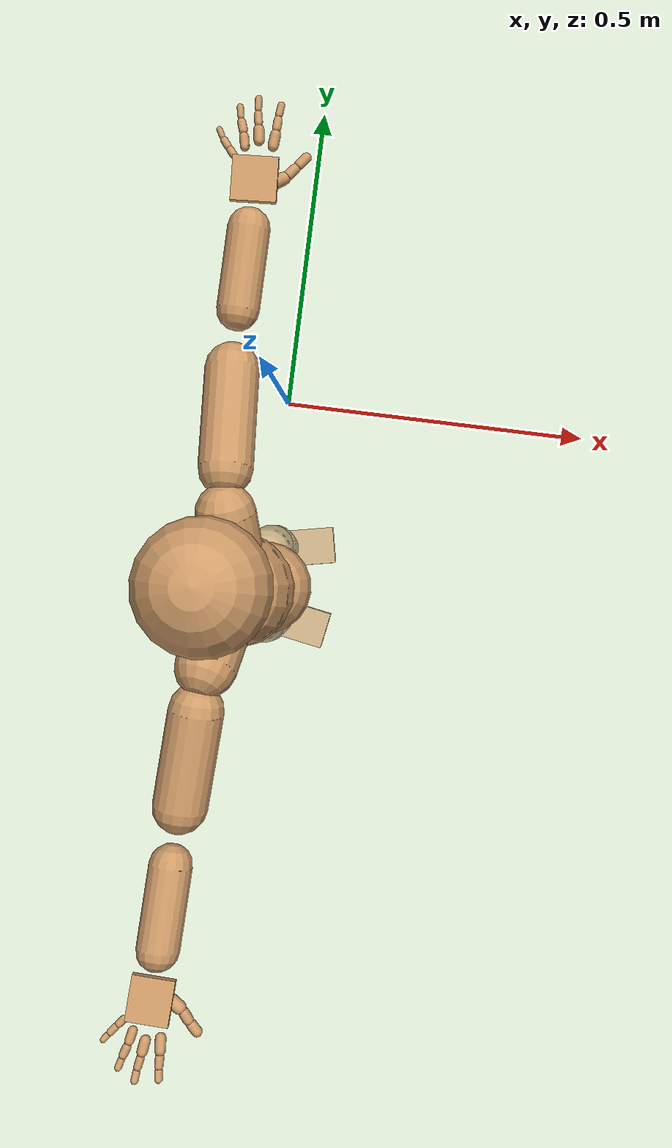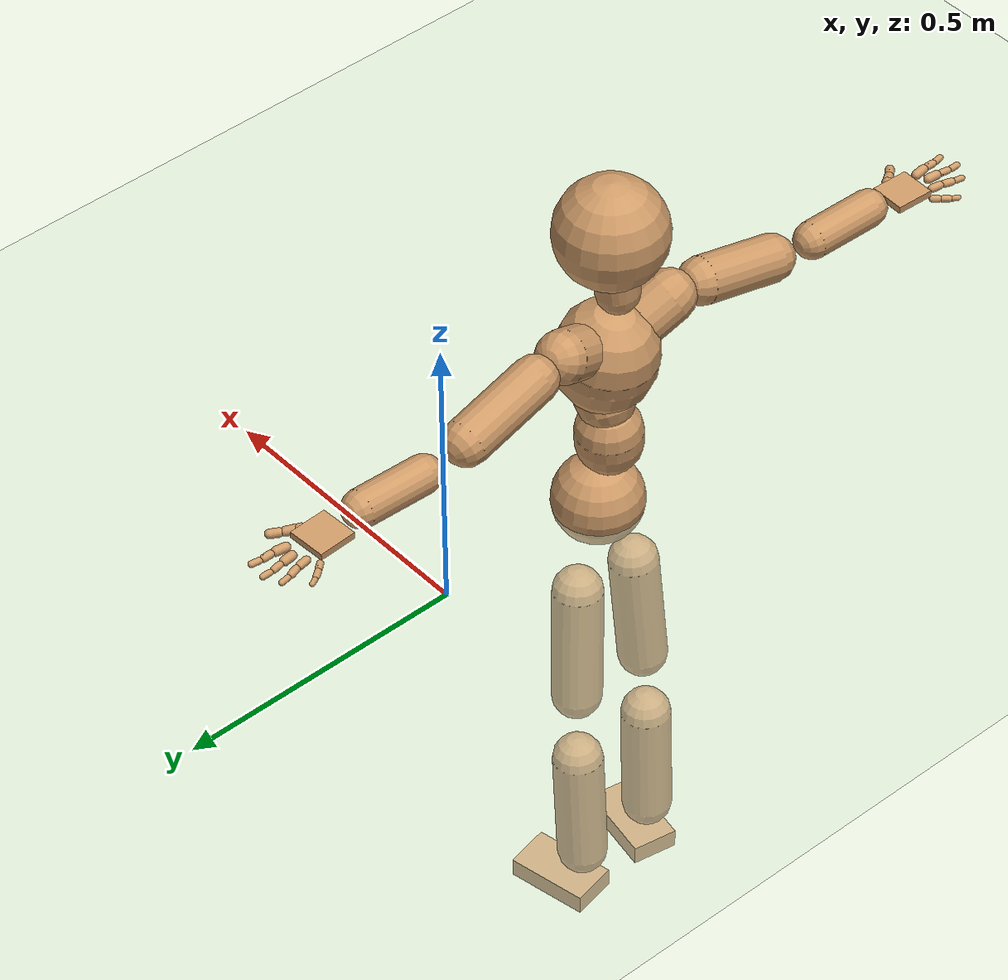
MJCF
<mujoco model="humanoid">
  <compiler coordinate="local" angle="radian"/>
  <default>
    <joint damping="0.0" armature="0.01" stiffness="0.0" limited="true"/>
    <geom conaffinity="1" condim="3" contype="7" margin="0.001" rgba="0.8 0.6 .4 1"/>
  </default>
  <asset>
    <texture type="skybox" builtin="gradient" rgb1=".4 .5 .6" rgb2="0 0 0" width="100" height="100"/>
    <texture builtin="flat" height="1278" mark="cross" markrgb="1 1 1" name="texgeom" random="0.01" rgb1="0.8 0.6 0.4" rgb2="0.8 0.6 0.4" type="cube" width="127"/>
    <texture builtin="checker" height="100" name="texplane" rgb1="0 0 0" rgb2="0.8 0.8 0.8" type="2d" width="100"/>
    <material name="MatPlane" reflectance="0.5" shininess="1" specular="1" texrepeat="60 60" texture="texplane"/>
    <material name="geom" texture="texgeom" texuniform="true"/>
  </asset>
  <worldbody>
    <light cutoff="100" diffuse="1 1 1" dir="-0 0 -1.3" directional="true" exponent="1" pos="0 0 1.3" specular=".1 .1 .1"/>
    <geom conaffinity="1" condim="3" name="floor" pos="0 0 0" rgba="0.8 0.9 0.8 1" size="100 100 .2" type="plane" material="MatPlane"/>
    <body name="Pelvis" pos="0 -0.3137 0.0127">
      <freejoint name="Pelvis"/>
      <geom type="sphere" contype="1" conaffinity="1" density="500" size="0.0772" pos="0.0000 0.0000 0.0000" name="Pelvis"/>
      <body name="L_Hip" pos="-0.0151 0.0552 -0.0824">
        <joint name="L_Hip_x" type="hinge" pos="0 0 0" axis="1 0 0" stiffness="800" damping="80" armature="0.02" range="-180.0000 180.0000"/>
        <joint name="L_Hip_y" type="hinge" pos="0 0 0" axis="0 1 0" stiffness="800" damping="80" armature="0.02" range="-180.0000 180.0000"/>
        <joint name="L_Hip_z" type="hinge" pos="0 0 0" axis="0 0 1" stiffness="800" damping="80" armature="0.02" range="-180.0000 180.0000"/>
        <geom type="capsule" contype="1" conaffinity="1" density="500" fromto="-0.0042 0.0044 -0.0725 -0.0169 0.0177 -0.2900" size="0.0426" name="L_Hip"/>
        <body name="L_Knee" pos="-0.0211 0.0221 -0.3626">
          <joint name="L_Knee_x" type="hinge" pos="0 0 0" axis="1 0 0" stiffness="800" damping="80" armature="0.02" range="-180.0000 180.0000"/>
          <joint name="L_Knee_y" type="hinge" pos="0 0 0" axis="0 1 0" stiffness="800" damping="80" armature="0.02" range="-180.0000 180.0000"/>
          <joint name="L_Knee_z" type="hinge" pos="0 0 0" axis="0 0 1" stiffness="800" damping="80" armature="0.02" range="-180.0000 180.0000"/>
          <geom type="capsule" contype="1" conaffinity="1" density="500" fromto="-0.0030 -0.0008 -0.0727 -0.0122 -0.0033 -0.2907" size="0.0429" name="L_Knee"/>
          <body name="L_Ankle" pos="-0.0152 -0.0041 -0.3634">
            <joint name="L_Ankle_x" type="hinge" pos="0 0 0" axis="1 0 0" stiffness="800" damping="80" armature="0.02" range="-180.0000 180.0000"/>
            <joint name="L_Ankle_y" type="hinge" pos="0 0 0" axis="0 1 0" stiffness="800" damping="80" armature="0.02" range="-180.0000 180.0000"/>
            <joint name="L_Ankle_z" type="hinge" pos="0 0 0" axis="0 0 1" stiffness="800" damping="80" armature="0.02" range="-180.0000 180.0000"/>
            <geom type="box" contype="1" conaffinity="1" density="500" pos="0.0483 0.0098 -0.0210" size="0.0725 0.0404 0.0179" quat="0.9950 0.0000 0.0000 0.0996" name="L_Ankle"/>
            <body name="L_Toe" pos="0.0966 0.0195 -0.042">
              <joint name="L_Toe_x" type="hinge" pos="0 0 0" axis="1 0 0" stiffness="500" damping="50" armature="0.02" range="-180.0000 180.0000"/>
              <joint name="L_Toe_y" type="hinge" pos="0 0 0" axis="0 1 0" stiffness="500" damping="50" armature="0.02" range="-180.0000 180.0000"/>
              <joint name="L_Toe_z" type="hinge" pos="0 0 0" axis="0 0 1" stiffness="500" damping="50" armature="0.02" range="-180.0000 180.0000"/>
              <geom type="box" contype="1" conaffinity="1" density="500" pos="0.0000 0.0000 0.0221" size="0.0008 0.002 0.0009" quat="0.9942 0.0000 0.0000 0.1073" name="L_Toe"/>
            </body>
          </body>
        </body>
      </body>
      <body name="R_Hip" pos="-0.0172 -0.0543 -0.0889">
        <joint name="R_Hip_x" type="hinge" pos="0 0 0" axis="1 0 0" stiffness="800" damping="80" armature="0.02" range="-180.0000 180.0000"/>
        <joint name="R_Hip_y" type="hinge" pos="0 0 0" axis="0 1 0" stiffness="800" damping="80" armature="0.02" range="-180.0000 180.0000"/>
        <joint name="R_Hip_z" type="hinge" pos="0 0 0" axis="0 0 1" stiffness="800" damping="80" armature="0.02" range="-180.0000 180.0000"/>
        <geom type="capsule" contype="1" conaffinity="1" density="500" fromto="-0.0031 -0.0049 -0.0716 -0.0125 -0.0196 -0.2865" size="0.0423" name="R_Hip"/>
        <body name="R_Knee" pos="-0.0156 -0.0246 -0.3581">
          <joint name="R_Knee_x" type="hinge" pos="0 0 0" axis="1 0 0" stiffness="800" damping="80" armature="0.02" range="-180.0000 180.0000"/>
          <joint name="R_Knee_y" type="hinge" pos="0 0 0" axis="0 1 0" stiffness="800" damping="80" armature="0.02" range="-180.0000 180.0000"/>
          <joint name="R_Knee_z" type="hinge" pos="0 0 0" axis="0 0 1" stiffness="800" damping="80" armature="0.02" range="-180.0000 180.0000"/>
          <geom type="capsule" contype="1" conaffinity="1" density="500" fromto="-0.0022 0.0000 -0.0711 -0.0088 0.0001 -0.2843" size="0.0428" name="R_Knee"/>
          <body name="R_Ankle" pos="-0.011 0.0002 -0.3554">
            <joint name="R_Ankle_x" type="hinge" pos="0 0 0" axis="1 0 0" stiffness="800" damping="80" armature="0.02" range="-180.0000 180.0000"/>
            <joint name="R_Ankle_y" type="hinge" pos="0 0 0" axis="0 1 0" stiffness="800" damping="80" armature="0.02" range="-180.0000 180.0000"/>
            <joint name="R_Ankle_z" type="hinge" pos="0 0 0" axis="0 0 1" stiffness="800" damping="80" armature="0.02" range="-180.0000 180.0000"/>
            <geom type="box" contype="1" conaffinity="1" density="500" pos="0.0453 -0.0081 -0.0229" size="0.0725 0.0404 0.0179" quat="0.9961 0.0000 0.0000 -0.0887" name="R_Ankle"/>
            <body name="R_Toe" pos="0.0906 -0.0163 -0.0459">
              <joint name="R_Toe_x" type="hinge" pos="0 0 0" axis="1 0 0" stiffness="500" damping="50" armature="0.02" range="-180.0000 180.0000"/>
              <joint name="R_Toe_y" type="hinge" pos="0 0 0" axis="0 1 0" stiffness="500" damping="50" armature="0.02" range="-180.0000 180.0000"/>
              <joint name="R_Toe_z" type="hinge" pos="0 0 0" axis="0 0 1" stiffness="500" damping="50" armature="0.02" range="-180.0000 180.0000"/>
              <geom type="box" contype="1" conaffinity="1" density="500" pos="0.0000 0.0000 0.0240" size="0.0008 0.002 0.0009" quat="0.9971 0.0000 0.0000 -0.0763" name="R_Toe"/>
            </body>
          </body>
        </body>
      </body>
      <body name="Torso" pos="-0.0224 -0.0043 0.0932">
        <joint name="Torso_x" type="hinge" pos="0 0 0" axis="1 0 0" stiffness="1000" damping="100" armature="0.02" range="-180.0000 180.0000"/>
        <joint name="Torso_y" type="hinge" pos="0 0 0" axis="0 1 0" stiffness="1000" damping="100" armature="0.02" range="-180.0000 180.0000"/>
        <joint name="Torso_z" type="hinge" pos="0 0 0" axis="0 0 1" stiffness="1000" damping="100" armature="0.02" range="-180.0000 180.0000"/>
        <geom type="capsule" contype="1" conaffinity="1" density="500" fromto="-0.0018 0.0043 0.0683 -0.0012 0.0028 0.0456" size="0.0559" name="Torso"/>
        <body name="Spine" pos="-0.003 0.0071 0.1139">
          <joint name="Spine_x" type="hinge" pos="0 0 0" axis="1 0 0" stiffness="1000" damping="100" armature="0.02" range="-180.0000 180.0000"/>
          <joint name="Spine_y" type="hinge" pos="0 0 0" axis="0 1 0" stiffness="1000" damping="100" armature="0.02" range="-180.0000 180.0000"/>
          <joint name="Spine_z" type="hinge" pos="0 0 0" axis="0 0 1" stiffness="1000" damping="100" armature="0.02" range="-180.0000 180.0000"/>
          <geom type="capsule" contype="1" conaffinity="1" density="500" fromto="0.0137 -0.0021 0.0240 0.0091 -0.0014 0.0160" size="0.0497" name="Spine"/>
          <body name="Chest" pos="0.0228 -0.0036 0.0399">
            <joint name="Chest_x" type="hinge" pos="0 0 0" axis="1 0 0" stiffness="1000" damping="100" armature="0.02" range="-180.0000 180.0000"/>
            <joint name="Chest_y" type="hinge" pos="0 0 0" axis="0 1 0" stiffness="1000" damping="100" armature="0.02" range="-180.0000 180.0000"/>
            <joint name="Chest_z" type="hinge" pos="0 0 0" axis="0 0 1" stiffness="1000" damping="100" armature="0.02" range="-180.0000 180.0000"/>
            <geom type="capsule" contype="1" conaffinity="1" density="500" fromto="-0.0145 -0.0014 0.0754 -0.0097 -0.0009 0.0503" size="0.0841" name="Chest"/>
            <body name="Neck" pos="-0.0364 -0.0049 0.1749">
              <joint name="Neck_x" type="hinge" pos="0 0 0" axis="1 0 0" stiffness="500" damping="50" armature="0.02" range="-180.0000 180.0000"/>
              <joint name="Neck_y" type="hinge" pos="0 0 0" axis="0 1 0" stiffness="500" damping="50" armature="0.02" range="-180.0000 180.0000"/>
              <joint name="Neck_z" type="hinge" pos="0 0 0" axis="0 0 1" stiffness="500" damping="50" armature="0.02" range="-180.0000 180.0000"/>
              <geom type="capsule" contype="1" conaffinity="1" density="500" fromto="0.0022 0.0016 0.0287 0.0089 0.0064 0.1149" size="0.0357" name="Neck"/>
              <body name="Head" pos="0.0111 0.008 0.1437">
                <joint name="Head_x" type="hinge" pos="0 0 0" axis="1 0 0" stiffness="500" damping="50" armature="0.02" range="-180.0000 180.0000"/>
                <joint name="Head_y" type="hinge" pos="0 0 0" axis="0 1 0" stiffness="500" damping="50" armature="0.02" range="-180.0000 180.0000"/>
                <joint name="Head_z" type="hinge" pos="0 0 0" axis="0 0 1" stiffness="500" damping="50" armature="0.02" range="-180.0000 180.0000"/>
                <geom type="sphere" contype="1" conaffinity="1" density="500" size="0.0919" pos="0.0000 0.0000 0.0000" name="Head"/>
              </body>
            </body>
            <body name="L_Thorax" pos="-0.0158 0.046 0.1028">
              <joint name="L_Thorax_x" type="hinge" pos="0 0 0" axis="1 0 0" stiffness="500" damping="50" armature="0.02" range="-180.0000 180.0000"/>
              <joint name="L_Thorax_y" type="hinge" pos="0 0 0" axis="0 1 0" stiffness="500" damping="50" armature="0.02" range="-180.0000 180.0000"/>
              <joint name="L_Thorax_z" type="hinge" pos="0 0 0" axis="0 0 1" stiffness="500" damping="50" armature="0.02" range="-180.0000 180.0000"/>
              <geom type="capsule" contype="1" conaffinity="1" density="500" fromto="-0.0038 0.0148 0.0075 -0.0152 0.0594 0.0300" size="0.0436" name="L_Thorax"/>
              <body name="L_Shoulder" pos="-0.019 0.0742 0.0375">
                <joint name="L_Shoulder_x" type="hinge" pos="0 0 0" axis="1 0 0" stiffness="500" damping="50" armature="0.02" range="-180.0000 180.0000"/>
                <joint name="L_Shoulder_y" type="hinge" pos="0 0 0" axis="0 1 0" stiffness="500" damping="50" armature="0.02" range="-180.0000 180.0000"/>
                <joint name="L_Shoulder_z" type="hinge" pos="0 0 0" axis="0 0 1" stiffness="500" damping="50" armature="0.02" range="-180.0000 180.0000"/>
                <geom type="capsule" contype="1" conaffinity="1" density="500" fromto="-0.0042 0.0482 -0.0099 -0.0167 0.1929 -0.0396" size="0.0393" name="L_Shoulder"/>
                <body name="L_Elbow" pos="-0.0209 0.2411 -0.0495">
                  <joint name="L_Elbow_x" type="hinge" pos="0 0 0" axis="1 0 0" stiffness="500" damping="50" armature="0.02" range="-720.0000 720.0000"/>
                  <joint name="L_Elbow_y" type="hinge" pos="0 0 0" axis="0 1 0" stiffness="500" damping="50" armature="0.02" range="-720.0000 720.0000"/>
                  <joint name="L_Elbow_z" type="hinge" pos="0 0 0" axis="0 0 1" stiffness="500" damping="50" armature="0.02" range="-720.0000 720.0000"/>
                  <geom type="capsule" contype="1" conaffinity="1" density="500" fromto="0.0005 0.0395 0.0011 0.0018 0.1578 0.0045" size="0.0312" name="L_Elbow"/>
                  <body name="L_Wrist" pos="0.0023 0.1973 0.0056">
                    <joint name="L_Wrist_x" type="hinge" pos="0 0 0" axis="1 0 0" stiffness="300" damping="30" armature="0.02" range="-180.0000 180.0000"/>
                    <joint name="L_Wrist_y" type="hinge" pos="0 0 0" axis="0 1 0" stiffness="300" damping="30" armature="0.02" range="-180.0000 180.0000"/>
                    <joint name="L_Wrist_z" type="hinge" pos="0 0 0" axis="0 0 1" stiffness="300" damping="30" armature="0.02" range="-180.0000 180.0000"/>
                    <geom type="box" contype="1" conaffinity="1" density="500" pos="-0.0019 0.0344 -0.0073" size="0.0332 0.0335 0.0058" quat="0.7267 0.0000 0.0000 -0.6870" name="L_Wrist"/>
                    <body name="L_Index1" pos="0.0176 0.0817 -0.0129">
                      <joint name="L_Index1_x" type="hinge" pos="0 0 0" axis="1 0 0" stiffness="100" damping="10" armature="0.02" range="-180.0000 180.0000"/>
                      <joint name="L_Index1_y" type="hinge" pos="0 0 0" axis="0 1 0" stiffness="100" damping="10" armature="0.02" range="-180.0000 180.0000"/>
                      <joint name="L_Index1_z" type="hinge" pos="0 0 0" axis="0 0 1" stiffness="100" damping="10" armature="0.02" range="-180.0000 180.0000"/>
                      <geom type="capsule" contype="1" conaffinity="1" density="500" fromto="0.0005 0.0056 0.0004 0.0021 0.0225 0.0017" size="0.0078" name="L_Index1"/>
                      <body name="L_Index2" pos="0.0026 0.0282 0.0021">
                        <joint name="L_Index2_x" type="hinge" pos="0 0 0" axis="1 0 0" stiffness="100" damping="10" armature="0.02" range="-180.0000 180.0000"/>
                        <joint name="L_Index2_y" type="hinge" pos="0 0 0" axis="0 1 0" stiffness="100" damping="10" armature="0.02" range="-180.0000 180.0000"/>
                        <joint name="L_Index2_z" type="hinge" pos="0 0 0" axis="0 0 1" stiffness="100" damping="10" armature="0.02" range="-180.0000 180.0000"/>
                        <geom type="capsule" contype="1" conaffinity="1" density="500" fromto="0.0001 0.0040 -0.0003 0.0004 0.0161 -0.0010" size="0.0064" name="L_Index2"/>
                        <body name="L_Index3" pos="0.0005 0.0202 -0.0013">
                          <joint name="L_Index3_x" type="hinge" pos="0 0 0" axis="1 0 0" stiffness="100" damping="10" armature="0.02" range="-180.0000 180.0000"/>
                          <joint name="L_Index3_y" type="hinge" pos="0 0 0" axis="0 1 0" stiffness="100" damping="10" armature="0.02" range="-180.0000 180.0000"/>
                          <joint name="L_Index3_z" type="hinge" pos="0 0 0" axis="0 0 1" stiffness="100" damping="10" armature="0.02" range="-180.0000 180.0000"/>
                          <geom type="capsule" contype="1" conaffinity="1" density="500" fromto="0.0005 0.0044 0.0001 0.0020 0.0177 0.0006" size="0.0054" name="L_Index3"/>
                        </body>
                      </body>
                    </body>
                    <body name="L_Middle1" pos="-0.0022 0.0874 -0.011">
                      <joint name="L_Middle1_x" type="hinge" pos="0 0 0" axis="1 0 0" stiffness="100" damping="10" armature="0.02" range="-180.0000 180.0000"/>
                      <joint name="L_Middle1_y" type="hinge" pos="0 0 0" axis="0 1 0" stiffness="100" damping="10" armature="0.02" range="-180.0000 180.0000"/>
                      <joint name="L_Middle1_z" type="hinge" pos="0 0 0" axis="0 0 1" stiffness="100" damping="10" armature="0.02" range="-180.0000 180.0000"/>
                      <geom type="capsule" contype="1" conaffinity="1" density="500" fromto="-0.0008 0.0053 0.0002 -0.0030 0.0212 0.0008" size="0.0078" name="L_Middle1"/>
                      <body name="L_Middle2" pos="-0.0038 0.0265 0.001">
                        <joint name="L_Middle2_x" type="hinge" pos="0 0 0" axis="1 0 0" stiffness="100" damping="10" armature="0.02" range="-180.0000 180.0000"/>
                        <joint name="L_Middle2_y" type="hinge" pos="0 0 0" axis="0 1 0" stiffness="100" damping="10" armature="0.02" range="-180.0000 180.0000"/>
                        <joint name="L_Middle2_z" type="hinge" pos="0 0 0" axis="0 0 1" stiffness="100" damping="10" armature="0.02" range="-180.0000 180.0000"/>
                        <geom type="capsule" contype="1" conaffinity="1" density="500" fromto="-0.0007 0.0041 -0.0001 -0.0028 0.0166 -0.0003" size="0.0059" name="L_Middle2"/>
                        <body name="L_Middle3" pos="-0.0035 0.0207 -0.0003">
                          <joint name="L_Middle3_x" type="hinge" pos="0 0 0" axis="1 0 0" stiffness="100" damping="10" armature="0.02" range="-180.0000 180.0000"/>
                          <joint name="L_Middle3_y" type="hinge" pos="0 0 0" axis="0 1 0" stiffness="100" damping="10" armature="0.02" range="-180.0000 180.0000"/>
                          <joint name="L_Middle3_z" type="hinge" pos="0 0 0" axis="0 0 1" stiffness="100" damping="10" armature="0.02" range="-180.0000 180.0000"/>
                          <geom type="capsule" contype="1" conaffinity="1" density="500" fromto="-0.0003 0.0045 0.0003 -0.0012 0.0182 0.0013" size="0.0052" name="L_Middle3"/>
                        </body>
                      </body>
                    </body>
                    <body name="L_Pinky1" pos="-0.0353 0.066 -0.0174">
                      <joint name="L_Pinky1_x" type="hinge" pos="0 0 0" axis="1 0 0" stiffness="100" damping="10" armature="0.02" range="-180.0000 180.0000"/>
                      <joint name="L_Pinky1_y" type="hinge" pos="0 0 0" axis="0 1 0" stiffness="100" damping="10" armature="0.02" range="-180.0000 180.0000"/>
                      <joint name="L_Pinky1_z" type="hinge" pos="0 0 0" axis="0 0 1" stiffness="100" damping="10" armature="0.02" range="-180.0000 180.0000"/>
                      <geom type="capsule" contype="1" conaffinity="1" density="500" fromto="-0.0022 0.0025 -0.0000 -0.0086 0.0101 -0.0001" size="0.0057" name="L_Pinky1"/>
                      <body name="L_Pinky2" pos="-0.0108 0.0126 -0.0001">
                        <joint name="L_Pinky2_x" type="hinge" pos="0 0 0" axis="1 0 0" stiffness="100" damping="10" armature="0.02" range="-180.0000 180.0000"/>
                        <joint name="L_Pinky2_y" type="hinge" pos="0 0 0" axis="0 1 0" stiffness="100" damping="10" armature="0.02" range="-180.0000 180.0000"/>
                        <joint name="L_Pinky2_z" type="hinge" pos="0 0 0" axis="0 0 1" stiffness="100" damping="10" armature="0.02" range="-180.0000 180.0000"/>
                        <geom type="capsule" contype="1" conaffinity="1" density="500" fromto="-0.0021 0.0026 -0.0001 -0.0083 0.0105 -0.0004" size="0.0056" name="L_Pinky2"/>
                        <body name="L_Pinky3" pos="-0.0104 0.0131 -0.0005">
                          <joint name="L_Pinky3_x" type="hinge" pos="0 0 0" axis="1 0 0" stiffness="100" damping="10" armature="0.02" range="-180.0000 180.0000"/>
                          <joint name="L_Pinky3_y" type="hinge" pos="0 0 0" axis="0 1 0" stiffness="100" damping="10" armature="0.02" range="-180.0000 180.0000"/>
                          <joint name="L_Pinky3_z" type="hinge" pos="0 0 0" axis="0 0 1" stiffness="100" damping="10" armature="0.02" range="-180.0000 180.0000"/>
                          <geom type="capsule" contype="1" conaffinity="1" density="500" fromto="-0.0017 0.0030 0.0003 -0.0067 0.0121 0.0012" size="0.0044" name="L_Pinky3"/>
                        </body>
                      </body>
                    </body>
                    <body name="L_Ring1" pos="-0.0216 0.0771 -0.0131">
                      <joint name="L_Ring1_x" type="hinge" pos="0 0 0" axis="1 0 0" stiffness="100" damping="10" armature="0.02" range="-180.0000 180.0000"/>
                      <joint name="L_Ring1_y" type="hinge" pos="0 0 0" axis="0 1 0" stiffness="100" damping="10" armature="0.02" range="-180.0000 180.0000"/>
                      <joint name="L_Ring1_z" type="hinge" pos="0 0 0" axis="0 0 1" stiffness="100" damping="10" armature="0.02" range="-180.0000 180.0000"/>
                      <geom type="capsule" contype="1" conaffinity="1" density="500" fromto="-0.0010 0.0048 0.0003 -0.0039 0.0191 0.0011" size="0.0068" name="L_Ring1"/>
                      <body name="L_Ring2" pos="-0.0049 0.0239 0.0014">
                        <joint name="L_Ring2_x" type="hinge" pos="0 0 0" axis="1 0 0" stiffness="100" damping="10" armature="0.02" range="-180.0000 180.0000"/>
                        <joint name="L_Ring2_y" type="hinge" pos="0 0 0" axis="0 1 0" stiffness="100" damping="10" armature="0.02" range="-180.0000 180.0000"/>
                        <joint name="L_Ring2_z" type="hinge" pos="0 0 0" axis="0 0 1" stiffness="100" damping="10" armature="0.02" range="-180.0000 180.0000"/>
                        <geom type="capsule" contype="1" conaffinity="1" density="500" fromto="-0.0013 0.0040 -0.0002 -0.0051 0.0159 -0.0006" size="0.0064" name="L_Ring2"/>
                        <body name="L_Ring3" pos="-0.0064 0.0199 -0.0008">
                          <joint name="L_Ring3_x" type="hinge" pos="0 0 0" axis="1 0 0" stiffness="100" damping="10" armature="0.02" range="-180.0000 180.0000"/>
                          <joint name="L_Ring3_y" type="hinge" pos="0 0 0" axis="0 1 0" stiffness="100" damping="10" armature="0.02" range="-180.0000 180.0000"/>
                          <joint name="L_Ring3_z" type="hinge" pos="0 0 0" axis="0 0 1" stiffness="100" damping="10" armature="0.02" range="-180.0000 180.0000"/>
                          <geom type="capsule" contype="1" conaffinity="1" density="500" fromto="-0.0009 0.0044 0.0002 -0.0035 0.0175 0.0010" size="0.0049" name="L_Ring3"/>
                        </body>
                      </body>
                    </body>
                    <body name="L_Thumb1" pos="0.0221 0.0322 -0.0186">
                      <joint name="L_Thumb1_x" type="hinge" pos="0 0 0" axis="1 0 0" stiffness="100" damping="10" armature="0.02" range="-180.0000 180.0000"/>
                      <joint name="L_Thumb1_y" type="hinge" pos="0 0 0" axis="0 1 0" stiffness="100" damping="10" armature="0.02" range="-180.0000 180.0000"/>
                      <joint name="L_Thumb1_z" type="hinge" pos="0 0 0" axis="0 0 1" stiffness="100" damping="10" armature="0.02" range="-180.0000 180.0000"/>
                      <geom type="capsule" contype="1" conaffinity="1" density="500" fromto="0.0041 0.0029 0.0000 0.0165 0.0114 0.0001" size="0.0098" name="L_Thumb1"/>
                      <body name="L_Thumb2" pos="0.0207 0.0143 0.0001">
                        <joint name="L_Thumb2_x" type="hinge" pos="0 0 0" axis="1 0 0" stiffness="100" damping="10" armature="0.02" range="-180.0000 180.0000"/>
                        <joint name="L_Thumb2_y" type="hinge" pos="0 0 0" axis="0 1 0" stiffness="100" damping="10" armature="0.02" range="-180.0000 180.0000"/>
                        <joint name="L_Thumb2_z" type="hinge" pos="0 0 0" axis="0 0 1" stiffness="100" damping="10" armature="0.02" range="-180.0000 180.0000"/>
                        <geom type="capsule" contype="1" conaffinity="1" density="500" fromto="0.0025 0.0035 -0.0010 0.0100 0.0142 -0.0039" size="0.0078" name="L_Thumb2"/>
                        <body name="L_Thumb3" pos="0.0125 0.0177 -0.0049">
                          <joint name="L_Thumb3_x" type="hinge" pos="0 0 0" axis="1 0 0" stiffness="100" damping="10" armature="0.02" range="-180.0000 180.0000"/>
                          <joint name="L_Thumb3_y" type="hinge" pos="0 0 0" axis="0 1 0" stiffness="100" damping="10" armature="0.02" range="-180.0000 180.0000"/>
                          <joint name="L_Thumb3_z" type="hinge" pos="0 0 0" axis="0 0 1" stiffness="100" damping="10" armature="0.02" range="-180.0000 180.0000"/>
                          <geom type="capsule" contype="1" conaffinity="1" density="500" fromto="0.0029 0.0039 -0.0006 0.0116 0.0158 -0.0023" size="0.0075" name="L_Thumb3"/>
                        </body>
                      </body>
                    </body>
                  </body>
                </body>
              </body>
            </body>
            <body name="R_Thorax" pos="-0.0205 -0.048 0.0993">
              <joint name="R_Thorax_x" type="hinge" pos="0 0 0" axis="1 0 0" stiffness="500" damping="50" armature="0.02" range="-180.0000 180.0000"/>
              <joint name="R_Thorax_y" type="hinge" pos="0 0 0" axis="0 1 0" stiffness="500" damping="50" armature="0.02" range="-180.0000 180.0000"/>
              <joint name="R_Thorax_z" type="hinge" pos="0 0 0" axis="0 0 1" stiffness="500" damping="50" armature="0.02" range="-180.0000 180.0000"/>
              <geom type="capsule" contype="1" conaffinity="1" density="500" fromto="-0.0028 -0.0159 0.0081 -0.0110 -0.0635 0.0322" size="0.0446" name="R_Thorax"/>
              <body name="R_Shoulder" pos="-0.0138 -0.0794 0.0403">
                <joint name="R_Shoulder_x" type="hinge" pos="0 0 0" axis="1 0 0" stiffness="500" damping="50" armature="0.02" range="-180.0000 180.0000"/>
                <joint name="R_Shoulder_y" type="hinge" pos="0 0 0" axis="0 1 0" stiffness="500" damping="50" armature="0.02" range="-180.0000 180.0000"/>
                <joint name="R_Shoulder_z" type="hinge" pos="0 0 0" axis="0 0 1" stiffness="500" damping="50" armature="0.02" range="-180.0000 180.0000"/>
                <geom type="capsule" contype="1" conaffinity="1" density="500" fromto="-0.0030 -0.0464 -0.0090 -0.0121 -0.1857 -0.0362" size="0.0397" name="R_Shoulder"/>
                <body name="R_Elbow" pos="-0.0152 -0.2321 -0.0452">
                  <joint name="R_Elbow_x" type="hinge" pos="0 0 0" axis="1 0 0" stiffness="500" damping="50" armature="0.02" range="-720.0000 720.0000"/>
                  <joint name="R_Elbow_y" type="hinge" pos="0 0 0" axis="0 1 0" stiffness="500" damping="50" armature="0.02" range="-720.0000 720.0000"/>
                  <joint name="R_Elbow_z" type="hinge" pos="0 0 0" axis="0 0 1" stiffness="500" damping="50" armature="0.02" range="-720.0000 720.0000"/>
                  <geom type="capsule" contype="1" conaffinity="1" density="500" fromto="-0.0010 -0.0397 0.0003 -0.0039 -0.1587 0.0012" size="0.0314" name="R_Elbow"/>
                  <body name="R_Wrist" pos="-0.0049 -0.1984 0.0015">
                    <joint name="R_Wrist_x" type="hinge" pos="0 0 0" axis="1 0 0" stiffness="300" damping="30" armature="0.02" range="-180.0000 180.0000"/>
                    <joint name="R_Wrist_y" type="hinge" pos="0 0 0" axis="0 1 0" stiffness="300" damping="30" armature="0.02" range="-180.0000 180.0000"/>
                    <joint name="R_Wrist_z" type="hinge" pos="0 0 0" axis="0 0 1" stiffness="300" damping="30" armature="0.02" range="-180.0000 180.0000"/>
                    <geom type="box" contype="1" conaffinity="1" density="500" pos="-0.0014 -0.0341 -0.0070" size="0.0332 0.0312 0.0061" quat="0.7219 0.0000 0.0000 0.6920" name="R_Wrist"/>
                    <body name="R_Index1" pos="0.0186 -0.0809 -0.0123">
                      <joint name="R_Index1_x" type="hinge" pos="0 0 0" axis="1 0 0" stiffness="100" damping="10" armature="0.02" range="-180.0000 180.0000"/>
                      <joint name="R_Index1_y" type="hinge" pos="0 0 0" axis="0 1 0" stiffness="100" damping="10" armature="0.02" range="-180.0000 180.0000"/>
                      <joint name="R_Index1_z" type="hinge" pos="0 0 0" axis="0 0 1" stiffness="100" damping="10" armature="0.02" range="-180.0000 180.0000"/>
                      <geom type="capsule" contype="1" conaffinity="1" density="500" fromto="0.0005 -0.0056 0.0004 0.0021 -0.0225 0.0017" size="0.0078" name="R_Index1"/>
                      <body name="R_Index2" pos="0.0026 -0.0282 0.0021">
                        <joint name="R_Index2_x" type="hinge" pos="0 0 0" axis="1 0 0" stiffness="100" damping="10" armature="0.02" range="-180.0000 180.0000"/>
                        <joint name="R_Index2_y" type="hinge" pos="0 0 0" axis="0 1 0" stiffness="100" damping="10" armature="0.02" range="-180.0000 180.0000"/>
                        <joint name="R_Index2_z" type="hinge" pos="0 0 0" axis="0 0 1" stiffness="100" damping="10" armature="0.02" range="-180.0000 180.0000"/>
                        <geom type="capsule" contype="1" conaffinity="1" density="500" fromto="0.0001 -0.0040 -0.0003 0.0004 -0.0161 -0.0010" size="0.0064" name="R_Index2"/>
                        <body name="R_Index3" pos="0.0005 -0.0202 -0.0013">
                          <joint name="R_Index3_x" type="hinge" pos="0 0 0" axis="1 0 0" stiffness="100" damping="10" armature="0.02" range="-180.0000 180.0000"/>
                          <joint name="R_Index3_y" type="hinge" pos="0 0 0" axis="0 1 0" stiffness="100" damping="10" armature="0.02" range="-180.0000 180.0000"/>
                          <joint name="R_Index3_z" type="hinge" pos="0 0 0" axis="0 0 1" stiffness="100" damping="10" armature="0.02" range="-180.0000 180.0000"/>
                          <geom type="capsule" contype="1" conaffinity="1" density="500" fromto="0.0005 -0.0036 0.0001 0.0020 -0.0145 0.0006" size="0.0057" name="R_Index3"/>
                        </body>
                      </body>
                    </body>
                    <body name="R_Middle1" pos="-0.0012 -0.0866 -0.0103">
                      <joint name="R_Middle1_x" type="hinge" pos="0 0 0" axis="1 0 0" stiffness="100" damping="10" armature="0.02" range="-180.0000 180.0000"/>
                      <joint name="R_Middle1_y" type="hinge" pos="0 0 0" axis="0 1 0" stiffness="100" damping="10" armature="0.02" range="-180.0000 180.0000"/>
                      <joint name="R_Middle1_z" type="hinge" pos="0 0 0" axis="0 0 1" stiffness="100" damping="10" armature="0.02" range="-180.0000 180.0000"/>
                      <geom type="capsule" contype="1" conaffinity="1" density="500" fromto="-0.0008 -0.0053 0.0002 -0.0030 -0.0212 0.0008" size="0.0078" name="R_Middle1"/>
                      <body name="R_Middle2" pos="-0.0038 -0.0265 0.001">
                        <joint name="R_Middle2_x" type="hinge" pos="0 0 0" axis="1 0 0" stiffness="100" damping="10" armature="0.02" range="-180.0000 180.0000"/>
                        <joint name="R_Middle2_y" type="hinge" pos="0 0 0" axis="0 1 0" stiffness="100" damping="10" armature="0.02" range="-180.0000 180.0000"/>
                        <joint name="R_Middle2_z" type="hinge" pos="0 0 0" axis="0 0 1" stiffness="100" damping="10" armature="0.02" range="-180.0000 180.0000"/>
                        <geom type="capsule" contype="1" conaffinity="1" density="500" fromto="-0.0007 -0.0041 -0.0001 -0.0028 -0.0166 -0.0003" size="0.0059" name="R_Middle2"/>
                        <body name="R_Middle3" pos="-0.0035 -0.0207 -0.0003">
                          <joint name="R_Middle3_x" type="hinge" pos="0 0 0" axis="1 0 0" stiffness="100" damping="10" armature="0.02" range="-180.0000 180.0000"/>
                          <joint name="R_Middle3_y" type="hinge" pos="0 0 0" axis="0 1 0" stiffness="100" damping="10" armature="0.02" range="-180.0000 180.0000"/>
                          <joint name="R_Middle3_z" type="hinge" pos="0 0 0" axis="0 0 1" stiffness="100" damping="10" armature="0.02" range="-180.0000 180.0000"/>
                          <geom type="capsule" contype="1" conaffinity="1" density="500" fromto="-0.0003 -0.0037 0.0003 -0.0012 -0.0150 0.0013" size="0.0055" name="R_Middle3"/>
                        </body>
                      </body>
                    </body>
                    <body name="R_Pinky1" pos="-0.0343 -0.0653 -0.0167">
                      <joint name="R_Pinky1_x" type="hinge" pos="0 0 0" axis="1 0 0" stiffness="100" damping="10" armature="0.02" range="-180.0000 180.0000"/>
                      <joint name="R_Pinky1_y" type="hinge" pos="0 0 0" axis="0 1 0" stiffness="100" damping="10" armature="0.02" range="-180.0000 180.0000"/>
                      <joint name="R_Pinky1_z" type="hinge" pos="0 0 0" axis="0 0 1" stiffness="100" damping="10" armature="0.02" range="-180.0000 180.0000"/>
                      <geom type="capsule" contype="1" conaffinity="1" density="500" fromto="-0.0022 -0.0025 -0.0000 -0.0086 -0.0101 -0.0001" size="0.0057" name="R_Pinky1"/>
                      <body name="R_Pinky2" pos="-0.0108 -0.0126 -0.0001">
                        <joint name="R_Pinky2_x" type="hinge" pos="0 0 0" axis="1 0 0" stiffness="100" damping="10" armature="0.02" range="-180.0000 180.0000"/>
                        <joint name="R_Pinky2_y" type="hinge" pos="0 0 0" axis="0 1 0" stiffness="100" damping="10" armature="0.02" range="-180.0000 180.0000"/>
                        <joint name="R_Pinky2_z" type="hinge" pos="0 0 0" axis="0 0 1" stiffness="100" damping="10" armature="0.02" range="-180.0000 180.0000"/>
                        <geom type="capsule" contype="1" conaffinity="1" density="500" fromto="-0.0021 -0.0026 -0.0001 -0.0083 -0.0105 -0.0004" size="0.0056" name="R_Pinky2"/>
                        <body name="R_Pinky3" pos="-0.0104 -0.0131 -0.0005">
                          <joint name="R_Pinky3_x" type="hinge" pos="0 0 0" axis="1 0 0" stiffness="100" damping="10" armature="0.02" range="-180.0000 180.0000"/>
                          <joint name="R_Pinky3_y" type="hinge" pos="0 0 0" axis="0 1 0" stiffness="100" damping="10" armature="0.02" range="-180.0000 180.0000"/>
                          <joint name="R_Pinky3_z" type="hinge" pos="0 0 0" axis="0 0 1" stiffness="100" damping="10" armature="0.02" range="-180.0000 180.0000"/>
                          <geom type="capsule" contype="1" conaffinity="1" density="500" fromto="-0.0017 -0.0022 0.0003 -0.0067 -0.0089 0.0012" size="0.0046" name="R_Pinky3"/>
                        </body>
                      </body>
                    </body>
                    <body name="R_Ring1" pos="-0.0206 -0.0763 -0.0125">
                      <joint name="R_Ring1_x" type="hinge" pos="0 0 0" axis="1 0 0" stiffness="100" damping="10" armature="0.02" range="-180.0000 180.0000"/>
                      <joint name="R_Ring1_y" type="hinge" pos="0 0 0" axis="0 1 0" stiffness="100" damping="10" armature="0.02" range="-180.0000 180.0000"/>
                      <joint name="R_Ring1_z" type="hinge" pos="0 0 0" axis="0 0 1" stiffness="100" damping="10" armature="0.02" range="-180.0000 180.0000"/>
                      <geom type="capsule" contype="1" conaffinity="1" density="500" fromto="-0.0010 -0.0048 0.0003 -0.0039 -0.0191 0.0011" size="0.0068" name="R_Ring1"/>
                      <body name="R_Ring2" pos="-0.0049 -0.0239 0.0014">
                        <joint name="R_Ring2_x" type="hinge" pos="0 0 0" axis="1 0 0" stiffness="100" damping="10" armature="0.02" range="-180.0000 180.0000"/>
                        <joint name="R_Ring2_y" type="hinge" pos="0 0 0" axis="0 1 0" stiffness="100" damping="10" armature="0.02" range="-180.0000 180.0000"/>
                        <joint name="R_Ring2_z" type="hinge" pos="0 0 0" axis="0 0 1" stiffness="100" damping="10" armature="0.02" range="-180.0000 180.0000"/>
                        <geom type="capsule" contype="1" conaffinity="1" density="500" fromto="-0.0013 -0.0040 -0.0002 -0.0051 -0.0159 -0.0006" size="0.0064" name="R_Ring2"/>
                        <body name="R_Ring3" pos="-0.0064 -0.0199 -0.0008">
                          <joint name="R_Ring3_x" type="hinge" pos="0 0 0" axis="1 0 0" stiffness="100" damping="10" armature="0.02" range="-180.0000 180.0000"/>
                          <joint name="R_Ring3_y" type="hinge" pos="0 0 0" axis="0 1 0" stiffness="100" damping="10" armature="0.02" range="-180.0000 180.0000"/>
                          <joint name="R_Ring3_z" type="hinge" pos="0 0 0" axis="0 0 1" stiffness="100" damping="10" armature="0.02" range="-180.0000 180.0000"/>
                          <geom type="capsule" contype="1" conaffinity="1" density="500" fromto="-0.0009 -0.0036 0.0002 -0.0035 -0.0143 0.0010" size="0.0052" name="R_Ring3"/>
                        </body>
                      </body>
                    </body>
                    <body name="R_Thumb1" pos="0.0231 -0.0314 -0.018">
                      <joint name="R_Thumb1_x" type="hinge" pos="0 0 0" axis="1 0 0" stiffness="100" damping="10" armature="0.02" range="-180.0000 180.0000"/>
                      <joint name="R_Thumb1_y" type="hinge" pos="0 0 0" axis="0 1 0" stiffness="100" damping="10" armature="0.02" range="-180.0000 180.0000"/>
                      <joint name="R_Thumb1_z" type="hinge" pos="0 0 0" axis="0 0 1" stiffness="100" damping="10" armature="0.02" range="-180.0000 180.0000"/>
                      <geom type="capsule" contype="1" conaffinity="1" density="500" fromto="0.0041 -0.0029 0.0000 0.0165 -0.0114 0.0001" size="0.0098" name="R_Thumb1"/>
                      <body name="R_Thumb2" pos="0.0207 -0.0143 0.0001">
                        <joint name="R_Thumb2_x" type="hinge" pos="0 0 0" axis="1 0 0" stiffness="100" damping="10" armature="0.02" range="-180.0000 180.0000"/>
                        <joint name="R_Thumb2_y" type="hinge" pos="0 0 0" axis="0 1 0" stiffness="100" damping="10" armature="0.02" range="-180.0000 180.0000"/>
                        <joint name="R_Thumb2_z" type="hinge" pos="0 0 0" axis="0 0 1" stiffness="100" damping="10" armature="0.02" range="-180.0000 180.0000"/>
                        <geom type="capsule" contype="1" conaffinity="1" density="500" fromto="0.0025 -0.0035 -0.0010 0.0100 -0.0142 -0.0039" size="0.0078" name="R_Thumb2"/>
                        <body name="R_Thumb3" pos="0.0125 -0.0177 -0.0049">
                          <joint name="R_Thumb3_x" type="hinge" pos="0 0 0" axis="1 0 0" stiffness="100" damping="10" armature="0.02" range="-180.0000 180.0000"/>
                          <joint name="R_Thumb3_y" type="hinge" pos="0 0 0" axis="0 1 0" stiffness="100" damping="10" armature="0.02" range="-180.0000 180.0000"/>
                          <joint name="R_Thumb3_z" type="hinge" pos="0 0 0" axis="0 0 1" stiffness="100" damping="10" armature="0.02" range="-180.0000 180.0000"/>
                          <geom type="capsule" contype="1" conaffinity="1" density="500" fromto="0.0029 -0.0031 -0.0006 0.0116 -0.0126 -0.0023" size="0.0077" name="R_Thumb3"/>
                        </body>
                      </body>
                    </body>
                  </body>
                </body>
              </body>
            </body>
          </body>
        </body>
      </body>
    </body>
  </worldbody>
  <actuator>
    <motor name="L_Hip_x" joint="L_Hip_x" gear="500"/>
    <motor name="L_Hip_y" joint="L_Hip_y" gear="500"/>
    <motor name="L_Hip_z" joint="L_Hip_z" gear="500"/>
    <motor name="L_Knee_x" joint="L_Knee_x" gear="500"/>
    <motor name="L_Knee_y" joint="L_Knee_y" gear="500"/>
    <motor name="L_Knee_z" joint="L_Knee_z" gear="500"/>
    <motor name="L_Ankle_x" joint="L_Ankle_x" gear="500"/>
    <motor name="L_Ankle_y" joint="L_Ankle_y" gear="500"/>
    <motor name="L_Ankle_z" joint="L_Ankle_z" gear="500"/>
    <motor name="L_Toe_x" joint="L_Toe_x" gear="500"/>
    <motor name="L_Toe_y" joint="L_Toe_y" gear="500"/>
    <motor name="L_Toe_z" joint="L_Toe_z" gear="500"/>
    <motor name="R_Hip_x" joint="R_Hip_x" gear="500"/>
    <motor name="R_Hip_y" joint="R_Hip_y" gear="500"/>
    <motor name="R_Hip_z" joint="R_Hip_z" gear="500"/>
    <motor name="R_Knee_x" joint="R_Knee_x" gear="500"/>
    <motor name="R_Knee_y" joint="R_Knee_y" gear="500"/>
    <motor name="R_Knee_z" joint="R_Knee_z" gear="500"/>
    <motor name="R_Ankle_x" joint="R_Ankle_x" gear="500"/>
    <motor name="R_Ankle_y" joint="R_Ankle_y" gear="500"/>
    <motor name="R_Ankle_z" joint="R_Ankle_z" gear="500"/>
    <motor name="R_Toe_x" joint="R_Toe_x" gear="500"/>
    <motor name="R_Toe_y" joint="R_Toe_y" gear="500"/>
    <motor name="R_Toe_z" joint="R_Toe_z" gear="500"/>
    <motor name="Torso_x" joint="Torso_x" gear="500"/>
    <motor name="Torso_y" joint="Torso_y" gear="500"/>
    <motor name="Torso_z" joint="Torso_z" gear="500"/>
    <motor name="Spine_x" joint="Spine_x" gear="500"/>
    <motor name="Spine_y" joint="Spine_y" gear="500"/>
    <motor name="Spine_z" joint="Spine_z" gear="500"/>
    <motor name="Chest_x" joint="Chest_x" gear="500"/>
    <motor name="Chest_y" joint="Chest_y" gear="500"/>
    <motor name="Chest_z" joint="Chest_z" gear="500"/>
    <motor name="Neck_x" joint="Neck_x" gear="500"/>
    <motor name="Neck_y" joint="Neck_y" gear="500"/>
    <motor name="Neck_z" joint="Neck_z" gear="500"/>
    <motor name="Head_x" joint="Head_x" gear="500"/>
    <motor name="Head_y" joint="Head_y" gear="500"/>
    <motor name="Head_z" joint="Head_z" gear="500"/>
    <motor name="L_Thorax_x" joint="L_Thorax_x" gear="500"/>
    <motor name="L_Thorax_y" joint="L_Thorax_y" gear="500"/>
    <motor name="L_Thorax_z" joint="L_Thorax_z" gear="500"/>
    <motor name="L_Shoulder_x" joint="L_Shoulder_x" gear="500"/>
    <motor name="L_Shoulder_y" joint="L_Shoulder_y" gear="500"/>
    <motor name="L_Shoulder_z" joint="L_Shoulder_z" gear="500"/>
    <motor name="L_Elbow_x" joint="L_Elbow_x" gear="500"/>
    <motor name="L_Elbow_y" joint="L_Elbow_y" gear="500"/>
    <motor name="L_Elbow_z" joint="L_Elbow_z" gear="500"/>
    <motor name="L_Wrist_x" joint="L_Wrist_x" gear="500"/>
    <motor name="L_Wrist_y" joint="L_Wrist_y" gear="500"/>
    <motor name="L_Wrist_z" joint="L_Wrist_z" gear="500"/>
    <motor name="L_Index1_x" joint="L_Index1_x" gear="500"/>
    <motor name="L_Index1_y" joint="L_Index1_y" gear="500"/>
    <motor name="L_Index1_z" joint="L_Index1_z" gear="500"/>
    <motor name="L_Index2_x" joint="L_Index2_x" gear="500"/>
    <motor name="L_Index2_y" joint="L_Index2_y" gear="500"/>
    <motor name="L_Index2_z" joint="L_Index2_z" gear="500"/>
    <motor name="L_Index3_x" joint="L_Index3_x" gear="500"/>
    <motor name="L_Index3_y" joint="L_Index3_y" gear="500"/>
    <motor name="L_Index3_z" joint="L_Index3_z" gear="500"/>
    <motor name="L_Middle1_x" joint="L_Middle1_x" gear="500"/>
    <motor name="L_Middle1_y" joint="L_Middle1_y" gear="500"/>
    <motor name="L_Middle1_z" joint="L_Middle1_z" gear="500"/>
    <motor name="L_Middle2_x" joint="L_Middle2_x" gear="500"/>
    <motor name="L_Middle2_y" joint="L_Middle2_y" gear="500"/>
    <motor name="L_Middle2_z" joint="L_Middle2_z" gear="500"/>
    <motor name="L_Middle3_x" joint="L_Middle3_x" gear="500"/>
    <motor name="L_Middle3_y" joint="L_Middle3_y" gear="500"/>
    <motor name="L_Middle3_z" joint="L_Middle3_z" gear="500"/>
    <motor name="L_Pinky1_x" joint="L_Pinky1_x" gear="500"/>
    <motor name="L_Pinky1_y" joint="L_Pinky1_y" gear="500"/>
    <motor name="L_Pinky1_z" joint="L_Pinky1_z" gear="500"/>
    <motor name="L_Pinky2_x" joint="L_Pinky2_x" gear="500"/>
    <motor name="L_Pinky2_y" joint="L_Pinky2_y" gear="500"/>
    <motor name="L_Pinky2_z" joint="L_Pinky2_z" gear="500"/>
    <motor name="L_Pinky3_x" joint="L_Pinky3_x" gear="500"/>
    <motor name="L_Pinky3_y" joint="L_Pinky3_y" gear="500"/>
    <motor name="L_Pinky3_z" joint="L_Pinky3_z" gear="500"/>
    <motor name="L_Ring1_x" joint="L_Ring1_x" gear="500"/>
    <motor name="L_Ring1_y" joint="L_Ring1_y" gear="500"/>
    <motor name="L_Ring1_z" joint="L_Ring1_z" gear="500"/>
    <motor name="L_Ring2_x" joint="L_Ring2_x" gear="500"/>
    <motor name="L_Ring2_y" joint="L_Ring2_y" gear="500"/>
    <motor name="L_Ring2_z" joint="L_Ring2_z" gear="500"/>
    <motor name="L_Ring3_x" joint="L_Ring3_x" gear="500"/>
    <motor name="L_Ring3_y" joint="L_Ring3_y" gear="500"/>
    <motor name="L_Ring3_z" joint="L_Ring3_z" gear="500"/>
    <motor name="L_Thumb1_x" joint="L_Thumb1_x" gear="500"/>
    <motor name="L_Thumb1_y" joint="L_Thumb1_y" gear="500"/>
    <motor name="L_Thumb1_z" joint="L_Thumb1_z" gear="500"/>
    <motor name="L_Thumb2_x" joint="L_Thumb2_x" gear="500"/>
    <motor name="L_Thumb2_y" joint="L_Thumb2_y" gear="500"/>
    <motor name="L_Thumb2_z" joint="L_Thumb2_z" gear="500"/>
    <motor name="L_Thumb3_x" joint="L_Thumb3_x" gear="500"/>
    <motor name="L_Thumb3_y" joint="L_Thumb3_y" gear="500"/>
    <motor name="L_Thumb3_z" joint="L_Thumb3_z" gear="500"/>
    <motor name="R_Thorax_x" joint="R_Thorax_x" gear="500"/>
    <motor name="R_Thorax_y" joint="R_Thorax_y" gear="500"/>
    <motor name="R_Thorax_z" joint="R_Thorax_z" gear="500"/>
    <motor name="R_Shoulder_x" joint="R_Shoulder_x" gear="500"/>
    <motor name="R_Shoulder_y" joint="R_Shoulder_y" gear="500"/>
    <motor name="R_Shoulder_z" joint="R_Shoulder_z" gear="500"/>
    <motor name="R_Elbow_x" joint="R_Elbow_x" gear="500"/>
    <motor name="R_Elbow_y" joint="R_Elbow_y" gear="500"/>
    <motor name="R_Elbow_z" joint="R_Elbow_z" gear="500"/>
    <motor name="R_Wrist_x" joint="R_Wrist_x" gear="500"/>
    <motor name="R_Wrist_y" joint="R_Wrist_y" gear="500"/>
    <motor name="R_Wrist_z" joint="R_Wrist_z" gear="500"/>
    <motor name="R_Index1_x" joint="R_Index1_x" gear="500"/>
    <motor name="R_Index1_y" joint="R_Index1_y" gear="500"/>
    <motor name="R_Index1_z" joint="R_Index1_z" gear="500"/>
    <motor name="R_Index2_x" joint="R_Index2_x" gear="500"/>
    <motor name="R_Index2_y" joint="R_Index2_y" gear="500"/>
    <motor name="R_Index2_z" joint="R_Index2_z" gear="500"/>
    <motor name="R_Index3_x" joint="R_Index3_x" gear="500"/>
    <motor name="R_Index3_y" joint="R_Index3_y" gear="500"/>
    <motor name="R_Index3_z" joint="R_Index3_z" gear="500"/>
    <motor name="R_Middle1_x" joint="R_Middle1_x" gear="500"/>
    <motor name="R_Middle1_y" joint="R_Middle1_y" gear="500"/>
    <motor name="R_Middle1_z" joint="R_Middle1_z" gear="500"/>
    <motor name="R_Middle2_x" joint="R_Middle2_x" gear="500"/>
    <motor name="R_Middle2_y" joint="R_Middle2_y" gear="500"/>
    <motor name="R_Middle2_z" joint="R_Middle2_z" gear="500"/>
    <motor name="R_Middle3_x" joint="R_Middle3_x" gear="500"/>
    <motor name="R_Middle3_y" joint="R_Middle3_y" gear="500"/>
    <motor name="R_Middle3_z" joint="R_Middle3_z" gear="500"/>
    <motor name="R_Pinky1_x" joint="R_Pinky1_x" gear="500"/>
    <motor name="R_Pinky1_y" joint="R_Pinky1_y" gear="500"/>
    <motor name="R_Pinky1_z" joint="R_Pinky1_z" gear="500"/>
    <motor name="R_Pinky2_x" joint="R_Pinky2_x" gear="500"/>
    <motor name="R_Pinky2_y" joint="R_Pinky2_y" gear="500"/>
    <motor name="R_Pinky2_z" joint="R_Pinky2_z" gear="500"/>
    <motor name="R_Pinky3_x" joint="R_Pinky3_x" gear="500"/>
    <motor name="R_Pinky3_y" joint="R_Pinky3_y" gear="500"/>
    <motor name="R_Pinky3_z" joint="R_Pinky3_z" gear="500"/>
    <motor name="R_Ring1_x" joint="R_Ring1_x" gear="500"/>
    <motor name="R_Ring1_y" joint="R_Ring1_y" gear="500"/>
    <motor name="R_Ring1_z" joint="R_Ring1_z" gear="500"/>
    <motor name="R_Ring2_x" joint="R_Ring2_x" gear="500"/>
    <motor name="R_Ring2_y" joint="R_Ring2_y" gear="500"/>
    <motor name="R_Ring2_z" joint="R_Ring2_z" gear="500"/>
    <motor name="R_Ring3_x" joint="R_Ring3_x" gear="500"/>
    <motor name="R_Ring3_y" joint="R_Ring3_y" gear="500"/>
    <motor name="R_Ring3_z" joint="R_Ring3_z" gear="500"/>
    <motor name="R_Thumb1_x" joint="R_Thumb1_x" gear="500"/>
    <motor name="R_Thumb1_y" joint="R_Thumb1_y" gear="500"/>
    <motor name="R_Thumb1_z" joint="R_Thumb1_z" gear="500"/>
    <motor name="R_Thumb2_x" joint="R_Thumb2_x" gear="500"/>
    <motor name="R_Thumb2_y" joint="R_Thumb2_y" gear="500"/>
    <motor name="R_Thumb2_z" joint="R_Thumb2_z" gear="500"/>
    <motor name="R_Thumb3_x" joint="R_Thumb3_x" gear="500"/>
    <motor name="R_Thumb3_y" joint="R_Thumb3_y" gear="500"/>
    <motor name="R_Thumb3_z" joint="R_Thumb3_z" gear="500"/>
  </actuator>
  <contact>
    <exclude body1="Torso" body2="Chest"/>
    <exclude body1="Head" body2="Chest"/>
    <exclude body1="R_Knee" body2="R_Toe"/>
    <exclude body1="R_Knee" body2="L_Ankle"/>
    <exclude body1="R_Knee" body2="L_Toe"/>
    <exclude body1="L_Knee" body2="L_Toe"/>
    <exclude body1="L_Knee" body2="R_Ankle"/>
    <exclude body1="L_Knee" body2="R_Toe"/>
    <exclude body1="L_Shoulder" body2="Chest"/>
    <exclude body1="R_Shoulder" body2="Chest"/>
  </contact>
  <sensor/>
  <size njmax="700" nconmax="700"/>
</mujoco>
